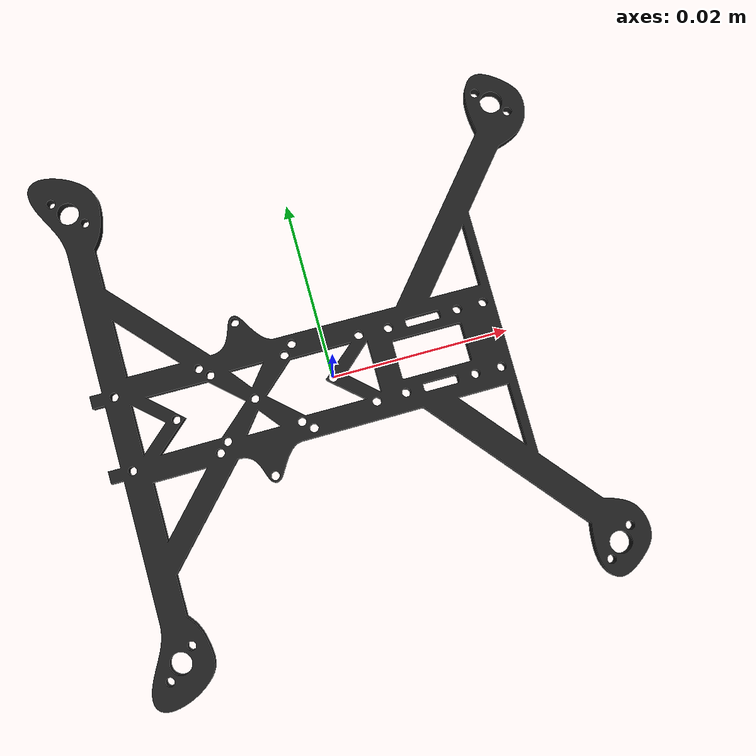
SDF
<?xml version='1.0'?>
<sdf version='1.6'>
  <model name='drone'>
    <link name='base_link'>
      <collision name='base_link_collision'>
        <pose frame=''>0 0 0 0 -0 1.57</pose>
        <geometry>
          <mesh>
            <scale>0.2 0.2 0.2</scale>
            <uri>model://drone/meshes/base_link.stl</uri>
          </mesh>
        </geometry>
        <surface>
          <friction>
            <ode>
              <mu>1</mu>
              <mu2>1</mu2>
              <fdir1>0 0 0</fdir1>
              <slip1>0</slip1>
              <slip2>0</slip2>
            </ode>
            <torsional>
              <coefficient>1</coefficient>
              <patch_radius>0</patch_radius>
              <surface_radius>0</surface_radius>
              <use_patch_radius>1</use_patch_radius>
              <ode>
                <slip>0</slip>
              </ode>
            </torsional>
          </friction>
          <bounce>
            <restitution_coefficient>0</restitution_coefficient>
            <threshold>1e+06</threshold>
          </bounce>
          <contact>
            <collide_without_contact>0</collide_without_contact>
            <collide_without_contact_bitmask>1</collide_without_contact_bitmask>
            <collide_bitmask>1</collide_bitmask>
            <ode>
              <soft_cfm>0</soft_cfm>
              <soft_erp>0.2</soft_erp>
              <kp>1e+13</kp>
              <kd>1</kd>
              <max_vel>0.01</max_vel>
              <min_depth>0</min_depth>
            </ode>
            <bullet>
              <split_impulse>1</split_impulse>
              <split_impulse_penetration_threshold>-0.01</split_impulse_penetration_threshold>
              <soft_cfm>0</soft_cfm>
              <soft_erp>0.2</soft_erp>
              <kp>1e+13</kp>
              <kd>1</kd>
            </bullet>
          </contact>
        </surface>
      </collision>
      <visual name='base_link_visual'>
        <pose frame=''>0 0 0 0 -0 1.57</pose>
        <geometry>
          <mesh>
            <scale>0.5 0.5 0.5</scale>
            <uri>model://drone/meshes/base_link.stl</uri>
          </mesh>
        </geometry>
        <material>
          <script>
            <name>Gazebo/Black</name>
          </script>
        </material>
        <transparency>0</transparency>
        <cast_shadows>1</cast_shadows>
      </visual>
    </link>
    <static>0</static>
  </model>

</sdf>
